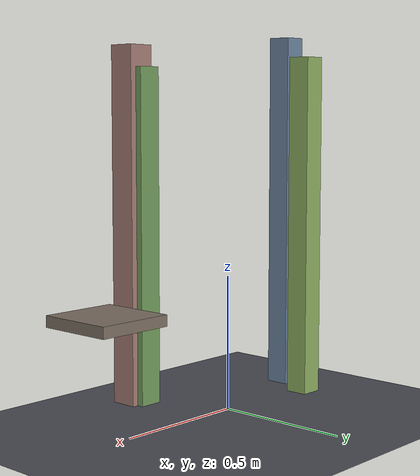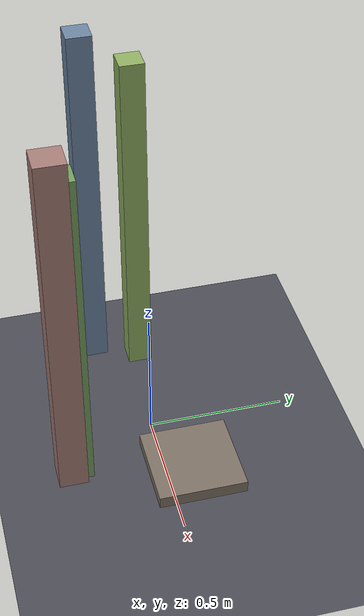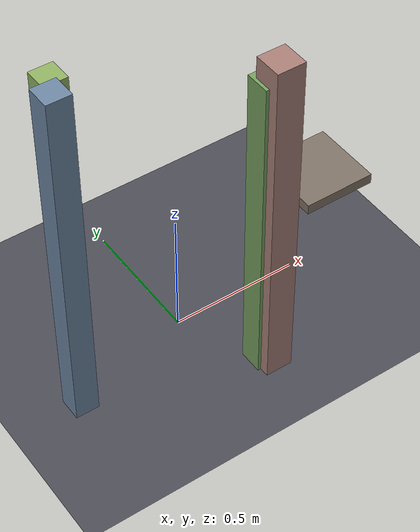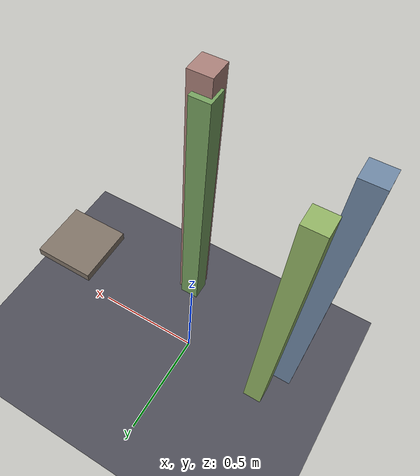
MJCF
<mujoco model="pillar_avoid_4">
  <compiler angle="radian" autolimits="true" boundmass="0" balanceinertia="true"/>
  <option impratio="10" gravity="0 0 -9.8" integrator="implicitfast" cone="elliptic" jacobian="sparse" noslip_iterations="4">
    <flag multiccd="enable" contact="enable" warmstart="enable"/>
  </option>
  <size njmax="6000" nconmax="6000"/>
  <visual><global offwidth="1280" offheight="720"/><map znear="0.001"/>
    <headlight ambient="0.45 0.45 0.45" diffuse="0.6 0.6 0.6"/></visual>
  <worldbody>
    <light pos="0.4 0.4 3" dir="0 0 -1" diffuse="0.7 0.7 0.7"/>
    <!-- Obstacle-avoidance variant 4: 4 tall PHYSICAL pillars; placements blocking >10%
         of exo-camera sightlines to the arm excluded (training view preserved). -->
    <body name="pillars" pos="0 0 0"><geom name="floor" type="plane" size="5 5 0.1" pos="0 0 0" rgba="0.30 0.30 0.34 1" contype="8" conaffinity="15"/><geom name="obj_pad" type="box" pos="0.60 0 0.42" size="0.14 0.14 0.02" rgba="0.5 0.45 0.4 1" contype="8" conaffinity="15"/><geom name="pillar_3" type="box" pos="0.151 -0.299 0.634" size="0.046 0.046 0.634" contype="8" conaffinity="15" rgba="0.46 0.63 0.37 1"/><geom name="pillar_4" type="box" pos="-0.480 -0.118 0.696" size="0.045 0.045 0.696" contype="8" conaffinity="15" rgba="0.43 0.53 0.64 1"/><geom name="pillar_5" type="box" pos="0.169 -0.330 0.674" size="0.052 0.052 0.674" contype="8" conaffinity="15" rgba="0.66 0.50 0.47 1"/><geom name="pillar_6" type="box" pos="-0.402 0.041 0.655" size="0.044 0.044 0.655" contype="8" conaffinity="15" rgba="0.57 0.70 0.39 1"/></body>
  </worldbody>
</mujoco>
